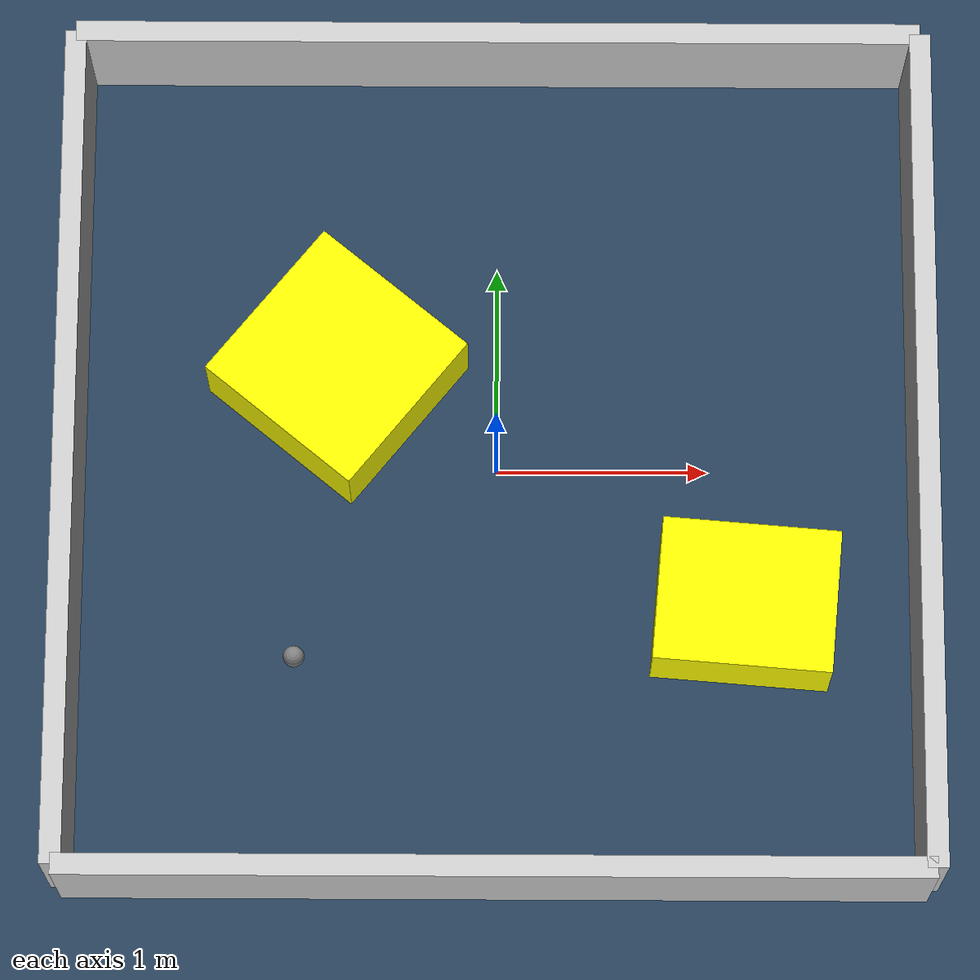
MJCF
<?xml version="1.0" ?>
<mujoco model="generated_environment">
  <option timestep="0.01" integrator="RK4" cone="elliptic"/>
  <default>
    <geom density="1"/>
  </default>
  <asset>
    <texture builtin="gradient" height="3072" rgb1="0.3 0.5 0.7" rgb2="0 0 0" type="skybox" width="512"/>
    <texture builtin="checker" height="300" mark="edge" markrgb="0.8 0.8 0.8" name="groundplane" rgb1="0.2 0.3 0.4" rgb2="0.1 0.2 0.3" type="2d" width="300"/>
    <material name="groundplane" reflectance="0.2" texrepeat="5 5" texture="groundplane" texuniform="true"/>
    <material name="robot" rgba="0.0 1.0 0.0 1"/>
  </asset>
  <worldbody>
    <light dir="0 0 -1" directional="true" pos="0 0 1.5"/>
    <geom condim="4" friction="1.0 0.005 0.001" material="groundplane" name="floor" size="0 0 0.05" type="plane"/>
    <body name="walls">
      <geom name="wall_1" condim="4" pos="-2.0 0.0 0.3" rgba="0.800000011920929 0.800000011920929 0.800000011920929 1.0" size="0.05 2.0 0.3" type="box"/>
      <geom name="wall_2" condim="4" pos="2.0 0.0 0.3" rgba="0.800000011920929 0.800000011920929 0.800000011920929 1.0" size="0.05 2.0 0.3" type="box"/>
      <geom name="wall_3" condim="4" pos="0.0 -2.0 0.3" rgba="0.800000011920929 0.800000011920929 0.800000011920929 1.0" size="2.0 0.05 0.3" type="box"/>
      <geom name="wall_4" condim="4" pos="0.0 2.0 0.3" rgba="0.800000011920929 0.800000011920929 0.800000011920929 1.0" size="2.0 0.05 0.3" type="box"/>
    </body>
    <body name="robot">
      <joint name="joint_x" type="slide" pos="0 0 0" axis="1 0 0"/>
      <joint name="joint_y" type="slide" pos="0 0 0" axis="0 1 0"/>
      <geom name="robot" type="sphere" pos="-0.9358936755291892 -0.9469620540788315 0.2" size="0.05" mass="5." friction="1.0 0.005 0.0001" condim="4"/>
      <site name="sensor_ball"/>
    </body>
    <body name="obstacle_1_movable">
      <geom name="obstacle_1_movable" condim="4" pos="1.1668921515807074 -0.6877946115987993 0.2" euler="0 0 355.3397754897801" friction="1.0 0.005 0.001" rgba="1 1 0 1" size="0.4164292287850232 0.3375216573491156 0.2" type="box" mass="0.1"/>
      <joint type="free"/>
    </body>
    <body name="obstacle_2_movable">
      <geom name="obstacle_2_movable" condim="4" pos="-0.7504275713879878 0.4577803108205063 0.2" euler="0 0 320.848559228416" friction="1.0 0.005 0.001" rgba="1 1 0 1" size="0.43980333536842975 0.43487424028950905 0.2" type="box" mass="0.1"/>
      <joint type="free"/>
    </body>
  </worldbody>
  <actuator>
    <motor name="actuator_x" joint="joint_x" gear="1" ctrlrange="-1 1"/>
    <motor name="actuator_y" joint="joint_y" gear="1" ctrlrange="-1 1"/>
  </actuator>
</mujoco>
